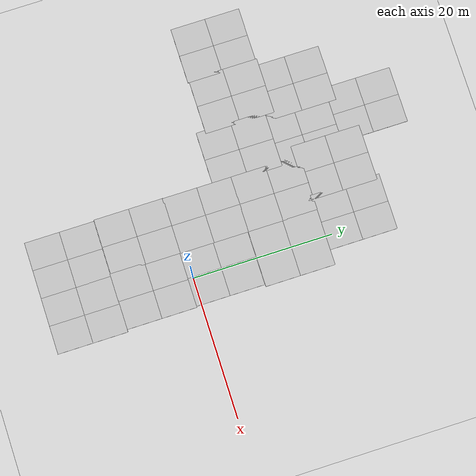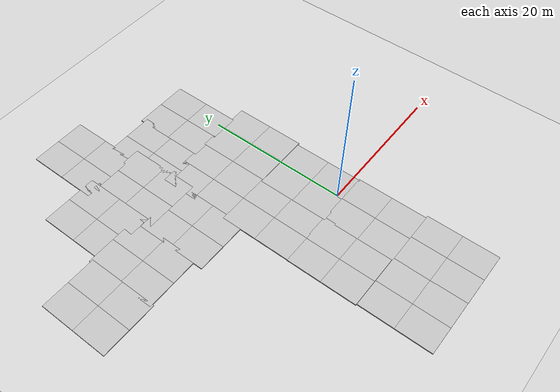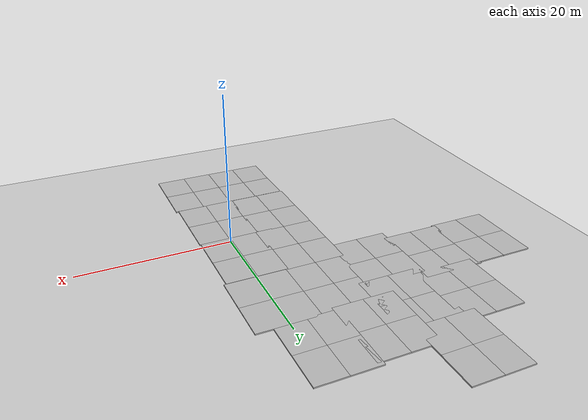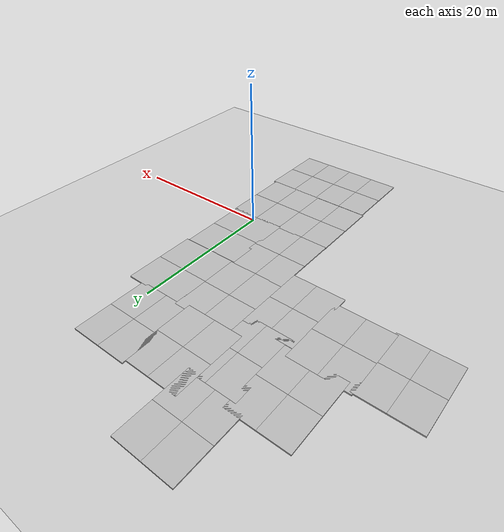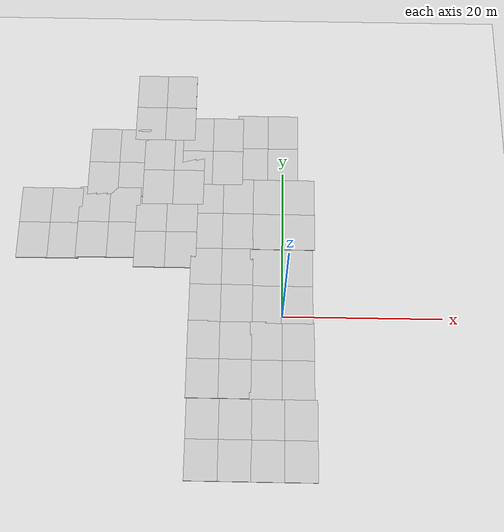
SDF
<sdf version="1.6">
 <world name="default">
  <model name="ground_plane">
   <static>1</static>
   <link name="link">
    <collision name="collision">
     <geometry><plane><normal>0 0 1</normal><size>100 100</size></plane></geometry>
     <surface><friction><ode><mu>100</mu><mu2>50</mu2></ode></friction></surface>
    </collision>
    <visual name="visual">
     <cast_shadows>0</cast_shadows>
     <geometry><plane><normal>0 0 1</normal><size>100 100</size></plane></geometry>
     <material>
      <script><uri>file://media/materials/scripts/gazebo.material</uri><name>Gazebo/Grey</name></script>
     </material>
    </visual>
   </link>
  </model>
  <model name="mud_box">
   <static>1</static>
   <link name="link">
    <collision name="collision"><geometry><box><size>8 10 0.2</size></box></geometry></collision>
    <visual name="visual_1">
     <pose>-2 2.5 0 0 -0 0</pose>
     <cast_shadows>0</cast_shadows>
     <geometry><box><size>4 5 0.2</size></box></geometry>
     <material>
      <script>
       <uri>model://mud_box/materials/scripts</uri>
       <uri>model://mud_box/materials/textures</uri>
       <name>vrc/mud</name>
      </script>
     </material>
    </visual>
    <visual name="visual_2">
     <pose>2 2.5 0 0 -0 0</pose>
     <cast_shadows>0</cast_shadows>
     <geometry><box><size>4 5 0.2</size></box></geometry>
     <material>
      <script>
       <uri>model://mud_box/materials/scripts</uri>
       <uri>model://mud_box/materials/textures</uri>
       <name>vrc/mud</name>
      </script>
     </material>
    </visual>
    <visual name="visual_3">
     <pose>2 -2.5 0 0 -0 0</pose>
     <cast_shadows>0</cast_shadows>
     <geometry><box><size>4 5 0.2</size></box></geometry>
     <material>
      <script>
       <uri>model://mud_box/materials/scripts</uri>
       <uri>model://mud_box/materials/textures</uri>
       <name>vrc/mud</name>
      </script>
     </material>
    </visual>
    <visual name="visual_4">
     <pose>-2 -2.5 0 0 -0 0</pose>
     <cast_shadows>0</cast_shadows>
     <geometry><box><size>4 5 0.2</size></box></geometry>
     <material>
      <script>
       <uri>model://mud_box/materials/scripts</uri>
       <uri>model://mud_box/materials/textures</uri>
       <name>vrc/mud</name>
      </script>
     </material>
    </visual>
   </link>
   <pose>-7.81459 14.1721 0 0 -0 0</pose>
  </model>
  <model name="mud_box_clone">
   <static>1</static>
   <link name="link">
    <collision name="collision"><geometry><box><size>8 10 0.2</size></box></geometry></collision>
    <visual name="visual_1">
     <pose>-2 2.5 0 0 -0 0</pose>
     <cast_shadows>0</cast_shadows>
     <geometry><box><size>4 5 0.2</size></box></geometry>
     <material>
      <script>
       <uri>model://mud_box/materials/scripts</uri>
       <uri>model://mud_box/materials/textures</uri>
       <name>vrc/mud</name>
      </script>
     </material>
    </visual>
    <visual name="visual_2">
     <pose>2 2.5 0 0 -0 0</pose>
     <cast_shadows>0</cast_shadows>
     <geometry><box><size>4 5 0.2</size></box></geometry>
     <material>
      <script>
       <uri>model://mud_box/materials/scripts</uri>
       <uri>model://mud_box/materials/textures</uri>
       <name>vrc/mud</name>
      </script>
     </material>
    </visual>
    <visual name="visual_3">
     <pose>2 -2.5 0 0 -0 0</pose>
     <cast_shadows>0</cast_shadows>
     <geometry><box><size>4 5 0.2</size></box></geometry>
     <material>
      <script>
       <uri>model://mud_box/materials/scripts</uri>
       <uri>model://mud_box/materials/textures</uri>
       <name>vrc/mud</name>
      </script>
     </material>
    </visual>
    <visual name="visual_4">
     <pose>-2 -2.5 0 0 -0 0</pose>
     <cast_shadows>0</cast_shadows>
     <geometry><box><size>4 5 0.2</size></box></geometry>
     <material>
      <script>
       <uri>model://mud_box/materials/scripts</uri>
       <uri>model://mud_box/materials/textures</uri>
       <name>vrc/mud</name>
      </script>
     </material>
    </visual>
   </link>
   <pose>-7.80732 4.2164 0 0 -0 0</pose>
  </model>
  <model name="mud_box_clone_0">
   <static>1</static>
   <link name="link">
    <collision name="collision"><geometry><box><size>8 10 0.2</size></box></geometry></collision>
    <visual name="visual_1">
     <pose>-2 2.5 0 0 -0 0</pose>
     <cast_shadows>0</cast_shadows>
     <geometry><box><size>4 5 0.2</size></box></geometry>
     <material>
      <script>
       <uri>model://mud_box/materials/scripts</uri>
       <uri>model://mud_box/materials/textures</uri>
       <name>vrc/mud</name>
      </script>
     </material>
    </visual>
    <visual name="visual_2">
     <pose>2 2.5 0 0 -0 0</pose>
     <cast_shadows>0</cast_shadows>
     <geometry><box><size>4 5 0.2</size></box></geometry>
     <material>
      <script>
       <uri>model://mud_box/materials/scripts</uri>
       <uri>model://mud_box/materials/textures</uri>
       <name>vrc/mud</name>
      </script>
     </material>
    </visual>
    <visual name="visual_3">
     <pose>2 -2.5 0 0 -0 0</pose>
     <cast_shadows>0</cast_shadows>
     <geometry><box><size>4 5 0.2</size></box></geometry>
     <material>
      <script>
       <uri>model://mud_box/materials/scripts</uri>
       <uri>model://mud_box/materials/textures</uri>
       <name>vrc/mud</name>
      </script>
     </material>
    </visual>
    <visual name="visual_4">
     <pose>-2 -2.5 0 0 -0 0</pose>
     <cast_shadows>0</cast_shadows>
     <geometry><box><size>4 5 0.2</size></box></geometry>
     <material>
      <script>
       <uri>model://mud_box/materials/scripts</uri>
       <uri>model://mud_box/materials/textures</uri>
       <name>vrc/mud</name>
      </script>
     </material>
    </visual>
   </link>
   <pose>-7.83797 -5.64984 0 0 -0 0</pose>
  </model>
  <model name="mud_box_clone_1">
   <static>1</static>
   <link name="link">
    <collision name="collision"><geometry><box><size>8 10 0.2</size></box></geometry></collision>
    <visual name="visual_1">
     <pose>-2 2.5 0 0 -0 0</pose>
     <cast_shadows>0</cast_shadows>
     <geometry><box><size>4 5 0.2</size></box></geometry>
     <material>
      <script>
       <uri>model://mud_box/materials/scripts</uri>
       <uri>model://mud_box/materials/textures</uri>
       <name>vrc/mud</name>
      </script>
     </material>
    </visual>
    <visual name="visual_2">
     <pose>2 2.5 0 0 -0 0</pose>
     <cast_shadows>0</cast_shadows>
     <geometry><box><size>4 5 0.2</size></box></geometry>
     <material>
      <script>
       <uri>model://mud_box/materials/scripts</uri>
       <uri>model://mud_box/materials/textures</uri>
       <name>vrc/mud</name>
      </script>
     </material>
    </visual>
    <visual name="visual_3">
     <pose>2 -2.5 0 0 -0 0</pose>
     <cast_shadows>0</cast_shadows>
     <geometry><box><size>4 5 0.2</size></box></geometry>
     <material>
      <script>
       <uri>model://mud_box/materials/scripts</uri>
       <uri>model://mud_box/materials/textures</uri>
       <name>vrc/mud</name>
      </script>
     </material>
    </visual>
    <visual name="visual_4">
     <pose>-2 -2.5 0 0 -0 0</pose>
     <cast_shadows>0</cast_shadows>
     <geometry><box><size>4 5 0.2</size></box></geometry>
     <material>
      <script>
       <uri>model://mud_box/materials/scripts</uri>
       <uri>model://mud_box/materials/textures</uri>
       <name>vrc/mud</name>
      </script>
     </material>
    </visual>
   </link>
   <pose>-7.67259 -15.6848 0 0 -0 0</pose>
  </model>
  <model name="mud_box_clone_2">
   <static>1</static>
   <link name="link">
    <collision name="collision"><geometry><box><size>8 10 0.2</size></box></geometry></collision>
    <visual name="visual_1">
     <pose>-2 2.5 0 0 -0 0</pose>
     <cast_shadows>0</cast_shadows>
     <geometry><box><size>4 5 0.2</size></box></geometry>
     <material>
      <script>
       <uri>model://mud_box/materials/scripts</uri>
       <uri>model://mud_box/materials/textures</uri>
       <name>vrc/mud</name>
      </script>
     </material>
    </visual>
    <visual name="visual_2">
     <pose>2 2.5 0 0 -0 0</pose>
     <cast_shadows>0</cast_shadows>
     <geometry><box><size>4 5 0.2</size></box></geometry>
     <material>
      <script>
       <uri>model://mud_box/materials/scripts</uri>
       <uri>model://mud_box/materials/textures</uri>
       <name>vrc/mud</name>
      </script>
     </material>
    </visual>
    <visual name="visual_3">
     <pose>2 -2.5 0 0 -0 0</pose>
     <cast_shadows>0</cast_shadows>
     <geometry><box><size>4 5 0.2</size></box></geometry>
     <material>
      <script>
       <uri>model://mud_box/materials/scripts</uri>
       <uri>model://mud_box/materials/textures</uri>
       <name>vrc/mud</name>
      </script>
     </material>
    </visual>
    <visual name="visual_4">
     <pose>-2 -2.5 0 0 -0 0</pose>
     <cast_shadows>0</cast_shadows>
     <geometry><box><size>4 5 0.2</size></box></geometry>
     <material>
      <script>
       <uri>model://mud_box/materials/scripts</uri>
       <uri>model://mud_box/materials/textures</uri>
       <name>vrc/mud</name>
      </script>
     </material>
    </visual>
   </link>
   <pose>0.111979 14.1193 0 0 -0 0</pose>
  </model>
  <model name="mud_box_clone_3">
   <static>1</static>
   <link name="link">
    <collision name="collision"><geometry><box><size>8 10 0.2</size></box></geometry></collision>
    <visual name="visual_1">
     <pose>-2 2.5 0 0 -0 0</pose>
     <cast_shadows>0</cast_shadows>
     <geometry><box><size>4 5 0.2</size></box></geometry>
     <material>
      <script>
       <uri>model://mud_box/materials/scripts</uri>
       <uri>model://mud_box/materials/textures</uri>
       <name>vrc/mud</name>
      </script>
     </material>
    </visual>
    <visual name="visual_2">
     <pose>2 2.5 0 0 -0 0</pose>
     <cast_shadows>0</cast_shadows>
     <geometry><box><size>4 5 0.2</size></box></geometry>
     <material>
      <script>
       <uri>model://mud_box/materials/scripts</uri>
       <uri>model://mud_box/materials/textures</uri>
       <name>vrc/mud</name>
      </script>
     </material>
    </visual>
    <visual name="visual_3">
     <pose>2 -2.5 0 0 -0 0</pose>
     <cast_shadows>0</cast_shadows>
     <geometry><box><size>4 5 0.2</size></box></geometry>
     <material>
      <script>
       <uri>model://mud_box/materials/scripts</uri>
       <uri>model://mud_box/materials/textures</uri>
       <name>vrc/mud</name>
      </script>
     </material>
    </visual>
    <visual name="visual_4">
     <pose>-2 -2.5 0 0 -0 0</pose>
     <cast_shadows>0</cast_shadows>
     <geometry><box><size>4 5 0.2</size></box></geometry>
     <material>
      <script>
       <uri>model://mud_box/materials/scripts</uri>
       <uri>model://mud_box/materials/textures</uri>
       <name>vrc/mud</name>
      </script>
     </material>
    </visual>
   </link>
   <pose>-0.195567 4.07983 0 0 -0 0</pose>
  </model>
  <model name="mud_box_clone_4">
   <static>1</static>
   <link name="link">
    <collision name="collision"><geometry><box><size>8 10 0.2</size></box></geometry></collision>
    <visual name="visual_1">
     <pose>-2 2.5 0 0 -0 0</pose>
     <cast_shadows>0</cast_shadows>
     <geometry><box><size>4 5 0.2</size></box></geometry>
     <material>
      <script>
       <uri>model://mud_box/materials/scripts</uri>
       <uri>model://mud_box/materials/textures</uri>
       <name>vrc/mud</name>
      </script>
     </material>
    </visual>
    <visual name="visual_2">
     <pose>2 2.5 0 0 -0 0</pose>
     <cast_shadows>0</cast_shadows>
     <geometry><box><size>4 5 0.2</size></box></geometry>
     <material>
      <script>
       <uri>model://mud_box/materials/scripts</uri>
       <uri>model://mud_box/materials/textures</uri>
       <name>vrc/mud</name>
      </script>
     </material>
    </visual>
    <visual name="visual_3">
     <pose>2 -2.5 0 0 -0 0</pose>
     <cast_shadows>0</cast_shadows>
     <geometry><box><size>4 5 0.2</size></box></geometry>
     <material>
      <script>
       <uri>model://mud_box/materials/scripts</uri>
       <uri>model://mud_box/materials/textures</uri>
       <name>vrc/mud</name>
      </script>
     </material>
    </visual>
    <visual name="visual_4">
     <pose>-2 -2.5 0 0 -0 0</pose>
     <cast_shadows>0</cast_shadows>
     <geometry><box><size>4 5 0.2</size></box></geometry>
     <material>
      <script>
       <uri>model://mud_box/materials/scripts</uri>
       <uri>model://mud_box/materials/textures</uri>
       <name>vrc/mud</name>
      </script>
     </material>
    </visual>
   </link>
   <pose>-0.050831 -5.73439 0 0 -0 0</pose>
  </model>
  <model name="mud_box_clone_5">
   <static>1</static>
   <link name="link">
    <collision name="collision"><geometry><box><size>8 10 0.2</size></box></geometry></collision>
    <visual name="visual_1">
     <pose>-2 2.5 0 0 -0 0</pose>
     <cast_shadows>0</cast_shadows>
     <geometry><box><size>4 5 0.2</size></box></geometry>
     <material>
      <script>
       <uri>model://mud_box/materials/scripts</uri>
       <uri>model://mud_box/materials/textures</uri>
       <name>vrc/mud</name>
      </script>
     </material>
    </visual>
    <visual name="visual_2">
     <pose>2 2.5 0 0 -0 0</pose>
     <cast_shadows>0</cast_shadows>
     <geometry><box><size>4 5 0.2</size></box></geometry>
     <material>
      <script>
       <uri>model://mud_box/materials/scripts</uri>
       <uri>model://mud_box/materials/textures</uri>
       <name>vrc/mud</name>
      </script>
     </material>
    </visual>
    <visual name="visual_3">
     <pose>2 -2.5 0 0 -0 0</pose>
     <cast_shadows>0</cast_shadows>
     <geometry><box><size>4 5 0.2</size></box></geometry>
     <material>
      <script>
       <uri>model://mud_box/materials/scripts</uri>
       <uri>model://mud_box/materials/textures</uri>
       <name>vrc/mud</name>
      </script>
     </material>
    </visual>
    <visual name="visual_4">
     <pose>-2 -2.5 0 0 -0 0</pose>
     <cast_shadows>0</cast_shadows>
     <geometry><box><size>4 5 0.2</size></box></geometry>
     <material>
      <script>
       <uri>model://mud_box/materials/scripts</uri>
       <uri>model://mud_box/materials/textures</uri>
       <name>vrc/mud</name>
      </script>
     </material>
    </visual>
   </link>
   <pose>0.292848 -15.6928 0 0 -0 0</pose>
  </model>
  <model name="mud_box_clone_1_clone">
   <static>1</static>
   <link name="link">
    <collision name="collision"><geometry><box><size>8 10 0.2</size></box></geometry></collision>
    <visual name="visual_1">
     <pose>-2 2.5 0 0 -0 0</pose>
     <cast_shadows>0</cast_shadows>
     <geometry><box><size>4 5 0.2</size></box></geometry>
     <material>
      <script>
       <uri>model://mud_box/materials/scripts</uri>
       <uri>model://mud_box/materials/textures</uri>
       <name>vrc/mud</name>
      </script>
     </material>
    </visual>
    <visual name="visual_2">
     <pose>2 2.5 0 0 -0 0</pose>
     <cast_shadows>0</cast_shadows>
     <geometry><box><size>4 5 0.2</size></box></geometry>
     <material>
      <script>
       <uri>model://mud_box/materials/scripts</uri>
       <uri>model://mud_box/materials/textures</uri>
       <name>vrc/mud</name>
      </script>
     </material>
    </visual>
    <visual name="visual_3">
     <pose>2 -2.5 0 0 -0 0</pose>
     <cast_shadows>0</cast_shadows>
     <geometry><box><size>4 5 0.2</size></box></geometry>
     <material>
      <script>
       <uri>model://mud_box/materials/scripts</uri>
       <uri>model://mud_box/materials/textures</uri>
       <name>vrc/mud</name>
      </script>
     </material>
    </visual>
    <visual name="visual_4">
     <pose>-2 -2.5 0 0 -0 0</pose>
     <cast_shadows>0</cast_shadows>
     <geometry><box><size>4 5 0.2</size></box></geometry>
     <material>
      <script>
       <uri>model://mud_box/materials/scripts</uri>
       <uri>model://mud_box/materials/textures</uri>
       <name>vrc/mud</name>
      </script>
     </material>
    </visual>
   </link>
   <pose>-2.02781 23.8419 0 0 -0 0</pose>
  </model>
  <model name="mud_box_clone_1_clone_0">
   <static>1</static>
   <link name="link">
    <collision name="collision"><geometry><box><size>8 10 0.2</size></box></geometry></collision>
    <visual name="visual_1">
     <pose>-2 2.5 0 0 -0 0</pose>
     <cast_shadows>0</cast_shadows>
     <geometry><box><size>4 5 0.2</size></box></geometry>
     <material>
      <script>
       <uri>model://mud_box/materials/scripts</uri>
       <uri>model://mud_box/materials/textures</uri>
       <name>vrc/mud</name>
      </script>
     </material>
    </visual>
    <visual name="visual_2">
     <pose>2 2.5 0 0 -0 0</pose>
     <cast_shadows>0</cast_shadows>
     <geometry><box><size>4 5 0.2</size></box></geometry>
     <material>
      <script>
       <uri>model://mud_box/materials/scripts</uri>
       <uri>model://mud_box/materials/textures</uri>
       <name>vrc/mud</name>
      </script>
     </material>
    </visual>
    <visual name="visual_3">
     <pose>2 -2.5 0 0 -0 0</pose>
     <cast_shadows>0</cast_shadows>
     <geometry><box><size>4 5 0.2</size></box></geometry>
     <material>
      <script>
       <uri>model://mud_box/materials/scripts</uri>
       <uri>model://mud_box/materials/textures</uri>
       <name>vrc/mud</name>
      </script>
     </material>
    </visual>
    <visual name="visual_4">
     <pose>-2 -2.5 0 0 -0 0</pose>
     <cast_shadows>0</cast_shadows>
     <geometry><box><size>4 5 0.2</size></box></geometry>
     <material>
      <script>
       <uri>model://mud_box/materials/scripts</uri>
       <uri>model://mud_box/materials/textures</uri>
       <name>vrc/mud</name>
      </script>
     </material>
    </visual>
   </link>
   <pose>-9.35962 23.3786 0 0 -0 0</pose>
  </model>
  <model name="mud_box_clone_1_clone_1">
   <static>1</static>
   <link name="link">
    <collision name="collision"><geometry><box><size>8 10 0.2</size></box></geometry></collision>
    <visual name="visual_1">
     <pose>-2 2.5 0 0 -0 0</pose>
     <cast_shadows>0</cast_shadows>
     <geometry><box><size>4 5 0.2</size></box></geometry>
     <material>
      <script>
       <uri>model://mud_box/materials/scripts</uri>
       <uri>model://mud_box/materials/textures</uri>
       <name>vrc/mud</name>
      </script>
     </material>
    </visual>
    <visual name="visual_2">
     <pose>2 2.5 0 0 -0 0</pose>
     <cast_shadows>0</cast_shadows>
     <geometry><box><size>4 5 0.2</size></box></geometry>
     <material>
      <script>
       <uri>model://mud_box/materials/scripts</uri>
       <uri>model://mud_box/materials/textures</uri>
       <name>vrc/mud</name>
      </script>
     </material>
    </visual>
    <visual name="visual_3">
     <pose>2 -2.5 0 0 -0 0</pose>
     <cast_shadows>0</cast_shadows>
     <geometry><box><size>4 5 0.2</size></box></geometry>
     <material>
      <script>
       <uri>model://mud_box/materials/scripts</uri>
       <uri>model://mud_box/materials/textures</uri>
       <name>vrc/mud</name>
      </script>
     </material>
    </visual>
    <visual name="visual_4">
     <pose>-2 -2.5 0 0 -0 0</pose>
     <cast_shadows>0</cast_shadows>
     <geometry><box><size>4 5 0.2</size></box></geometry>
     <material>
      <script>
       <uri>model://mud_box/materials/scripts</uri>
       <uri>model://mud_box/materials/textures</uri>
       <name>vrc/mud</name>
      </script>
     </material>
    </visual>
   </link>
   <pose>-15.1407 11.4445 0 0 -0 0</pose>
  </model>
  <model name="mud_box_clone_1_clone_2">
   <static>1</static>
   <link name="link">
    <collision name="collision"><geometry><box><size>8 10 0.2</size></box></geometry></collision>
    <visual name="visual_1">
     <pose>-2 2.5 0 0 -0 0</pose>
     <cast_shadows>0</cast_shadows>
     <geometry><box><size>4 5 0.2</size></box></geometry>
     <material>
      <script>
       <uri>model://mud_box/materials/scripts</uri>
       <uri>model://mud_box/materials/textures</uri>
       <name>vrc/mud</name>
      </script>
     </material>
    </visual>
    <visual name="visual_2">
     <pose>2 2.5 0 0 -0 0</pose>
     <cast_shadows>0</cast_shadows>
     <geometry><box><size>4 5 0.2</size></box></geometry>
     <material>
      <script>
       <uri>model://mud_box/materials/scripts</uri>
       <uri>model://mud_box/materials/textures</uri>
       <name>vrc/mud</name>
      </script>
     </material>
    </visual>
    <visual name="visual_3">
     <pose>2 -2.5 0 0 -0 0</pose>
     <cast_shadows>0</cast_shadows>
     <geometry><box><size>4 5 0.2</size></box></geometry>
     <material>
      <script>
       <uri>model://mud_box/materials/scripts</uri>
       <uri>model://mud_box/materials/textures</uri>
       <name>vrc/mud</name>
      </script>
     </material>
    </visual>
    <visual name="visual_4">
     <pose>-2 -2.5 0 0 -0 0</pose>
     <cast_shadows>0</cast_shadows>
     <geometry><box><size>4 5 0.2</size></box></geometry>
     <material>
      <script>
       <uri>model://mud_box/materials/scripts</uri>
       <uri>model://mud_box/materials/textures</uri>
       <name>vrc/mud</name>
      </script>
     </material>
    </visual>
   </link>
   <pose>-22.6581 12.7231 0 0 -0 0</pose>
  </model>
  <model name="mud_box_clone_1_clone_3">
   <static>1</static>
   <link name="link">
    <collision name="collision"><geometry><box><size>8 10 0.2</size></box></geometry></collision>
    <visual name="visual_1">
     <pose>-2 2.5 0 0 -0 0</pose>
     <cast_shadows>0</cast_shadows>
     <geometry><box><size>4 5 0.2</size></box></geometry>
     <material>
      <script>
       <uri>model://mud_box/materials/scripts</uri>
       <uri>model://mud_box/materials/textures</uri>
       <name>vrc/mud</name>
      </script>
     </material>
    </visual>
    <visual name="visual_2">
     <pose>2 2.5 0 0 -0 0</pose>
     <cast_shadows>0</cast_shadows>
     <geometry><box><size>4 5 0.2</size></box></geometry>
     <material>
      <script>
       <uri>model://mud_box/materials/scripts</uri>
       <uri>model://mud_box/materials/textures</uri>
       <name>vrc/mud</name>
      </script>
     </material>
    </visual>
    <visual name="visual_3">
     <pose>2 -2.5 0 0 -0 0</pose>
     <cast_shadows>0</cast_shadows>
     <geometry><box><size>4 5 0.2</size></box></geometry>
     <material>
      <script>
       <uri>model://mud_box/materials/scripts</uri>
       <uri>model://mud_box/materials/textures</uri>
       <name>vrc/mud</name>
      </script>
     </material>
    </visual>
    <visual name="visual_4">
     <pose>-2 -2.5 0 0 -0 0</pose>
     <cast_shadows>0</cast_shadows>
     <geometry><box><size>4 5 0.2</size></box></geometry>
     <material>
      <script>
       <uri>model://mud_box/materials/scripts</uri>
       <uri>model://mud_box/materials/textures</uri>
       <name>vrc/mud</name>
      </script>
     </material>
    </visual>
   </link>
   <pose>-30.2592 12.5184 0 0 -0 0</pose>
  </model>
  <model name="mud_box_clone_1_clone_4">
   <static>1</static>
   <link name="link">
    <collision name="collision"><geometry><box><size>8 10 0.2</size></box></geometry></collision>
    <visual name="visual_1">
     <pose>-2 2.5 0 0 -0 0</pose>
     <cast_shadows>0</cast_shadows>
     <geometry><box><size>4 5 0.2</size></box></geometry>
     <material>
      <script>
       <uri>model://mud_box/materials/scripts</uri>
       <uri>model://mud_box/materials/textures</uri>
       <name>vrc/mud</name>
      </script>
     </material>
    </visual>
    <visual name="visual_2">
     <pose>2 2.5 0 0 -0 0</pose>
     <cast_shadows>0</cast_shadows>
     <geometry><box><size>4 5 0.2</size></box></geometry>
     <material>
      <script>
       <uri>model://mud_box/materials/scripts</uri>
       <uri>model://mud_box/materials/textures</uri>
       <name>vrc/mud</name>
      </script>
     </material>
    </visual>
    <visual name="visual_3">
     <pose>2 -2.5 0 0 -0 0</pose>
     <cast_shadows>0</cast_shadows>
     <geometry><box><size>4 5 0.2</size></box></geometry>
     <material>
      <script>
       <uri>model://mud_box/materials/scripts</uri>
       <uri>model://mud_box/materials/textures</uri>
       <name>vrc/mud</name>
      </script>
     </material>
    </visual>
    <visual name="visual_4">
     <pose>-2 -2.5 0 0 -0 0</pose>
     <cast_shadows>0</cast_shadows>
     <geometry><box><size>4 5 0.2</size></box></geometry>
     <material>
      <script>
       <uri>model://mud_box/materials/scripts</uri>
       <uri>model://mud_box/materials/textures</uri>
       <name>vrc/mud</name>
      </script>
     </material>
    </visual>
   </link>
   <pose>-14.4521 20.4222 0 0 -0 0</pose>
  </model>
  <model name="mud_box_clone_1_clone_5">
   <static>1</static>
   <link name="link">
    <collision name="collision"><geometry><box><size>8 10 0.2</size></box></geometry></collision>
    <visual name="visual_1">
     <pose>-2 2.5 0 0 -0 0</pose>
     <cast_shadows>0</cast_shadows>
     <geometry><box><size>4 5 0.2</size></box></geometry>
     <material>
      <script>
       <uri>model://mud_box/materials/scripts</uri>
       <uri>model://mud_box/materials/textures</uri>
       <name>vrc/mud</name>
      </script>
     </material>
    </visual>
    <visual name="visual_2">
     <pose>2 2.5 0 0 -0 0</pose>
     <cast_shadows>0</cast_shadows>
     <geometry><box><size>4 5 0.2</size></box></geometry>
     <material>
      <script>
       <uri>model://mud_box/materials/scripts</uri>
       <uri>model://mud_box/materials/textures</uri>
       <name>vrc/mud</name>
      </script>
     </material>
    </visual>
    <visual name="visual_3">
     <pose>2 -2.5 0 0 -0 0</pose>
     <cast_shadows>0</cast_shadows>
     <geometry><box><size>4 5 0.2</size></box></geometry>
     <material>
      <script>
       <uri>model://mud_box/materials/scripts</uri>
       <uri>model://mud_box/materials/textures</uri>
       <name>vrc/mud</name>
      </script>
     </material>
    </visual>
    <visual name="visual_4">
     <pose>-2 -2.5 0 0 -0 0</pose>
     <cast_shadows>0</cast_shadows>
     <geometry><box><size>4 5 0.2</size></box></geometry>
     <material>
      <script>
       <uri>model://mud_box/materials/scripts</uri>
       <uri>model://mud_box/materials/textures</uri>
       <name>vrc/mud</name>
      </script>
     </material>
    </visual>
   </link>
   <pose>-21.7502 21.4855 0 0 -0 0</pose>
  </model>
  <model name="mud_box_clone_1_clone_6">
   <static>1</static>
   <link name="link">
    <collision name="collision"><geometry><box><size>8 10 0.2</size></box></geometry></collision>
    <visual name="visual_1">
     <pose>-2 2.5 0 0 -0 0</pose>
     <cast_shadows>0</cast_shadows>
     <geometry><box><size>4 5 0.2</size></box></geometry>
     <material>
      <script>
       <uri>model://mud_box/materials/scripts</uri>
       <uri>model://mud_box/materials/textures</uri>
       <name>vrc/mud</name>
      </script>
     </material>
    </visual>
    <visual name="visual_2">
     <pose>2 2.5 0 0 -0 0</pose>
     <cast_shadows>0</cast_shadows>
     <geometry><box><size>4 5 0.2</size></box></geometry>
     <material>
      <script>
       <uri>model://mud_box/materials/scripts</uri>
       <uri>model://mud_box/materials/textures</uri>
       <name>vrc/mud</name>
      </script>
     </material>
    </visual>
    <visual name="visual_3">
     <pose>2 -2.5 0 0 -0 0</pose>
     <cast_shadows>0</cast_shadows>
     <geometry><box><size>4 5 0.2</size></box></geometry>
     <material>
      <script>
       <uri>model://mud_box/materials/scripts</uri>
       <uri>model://mud_box/materials/textures</uri>
       <name>vrc/mud</name>
      </script>
     </material>
    </visual>
    <visual name="visual_4">
     <pose>-2 -2.5 0 0 -0 0</pose>
     <cast_shadows>0</cast_shadows>
     <geometry><box><size>4 5 0.2</size></box></geometry>
     <material>
      <script>
       <uri>model://mud_box/materials/scripts</uri>
       <uri>model://mud_box/materials/textures</uri>
       <name>vrc/mud</name>
      </script>
     </material>
    </visual>
   </link>
   <pose>-15.8356 29.991 0 0 -0 0</pose>
  </model>
 </world>
</sdf>
